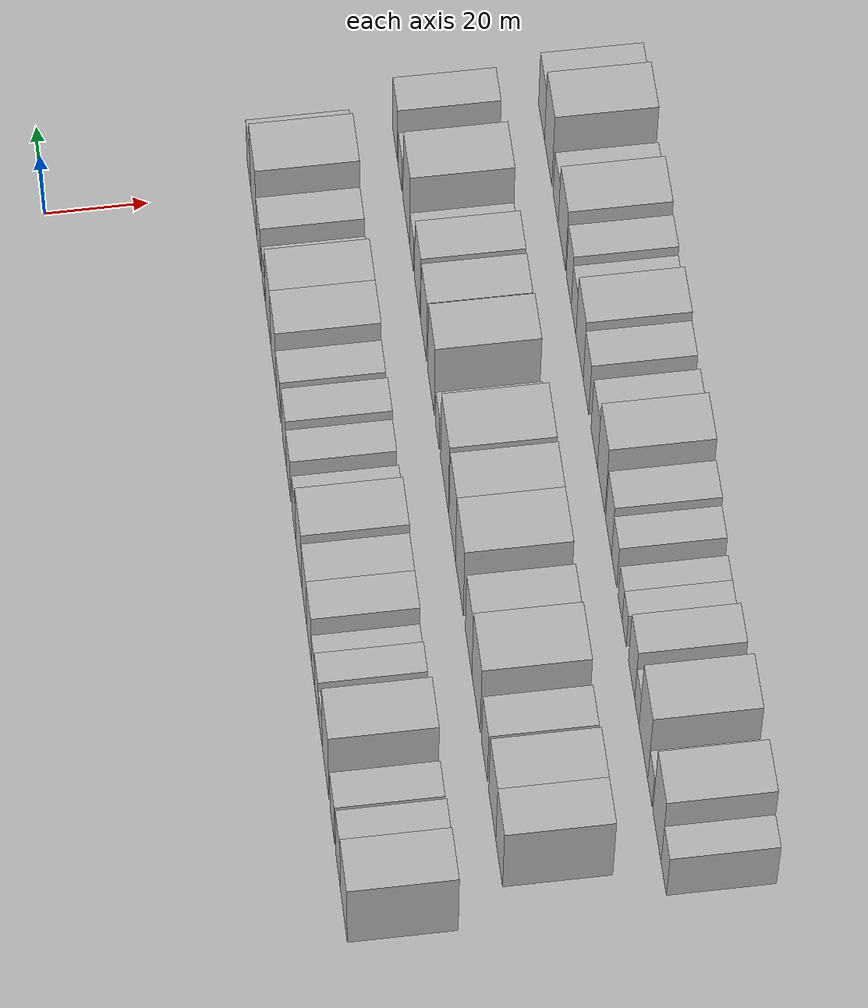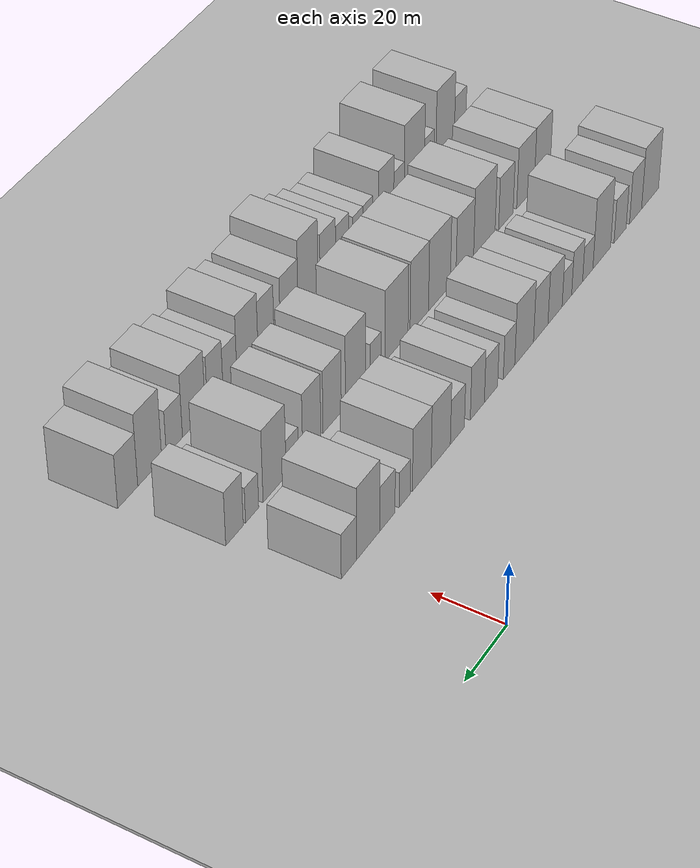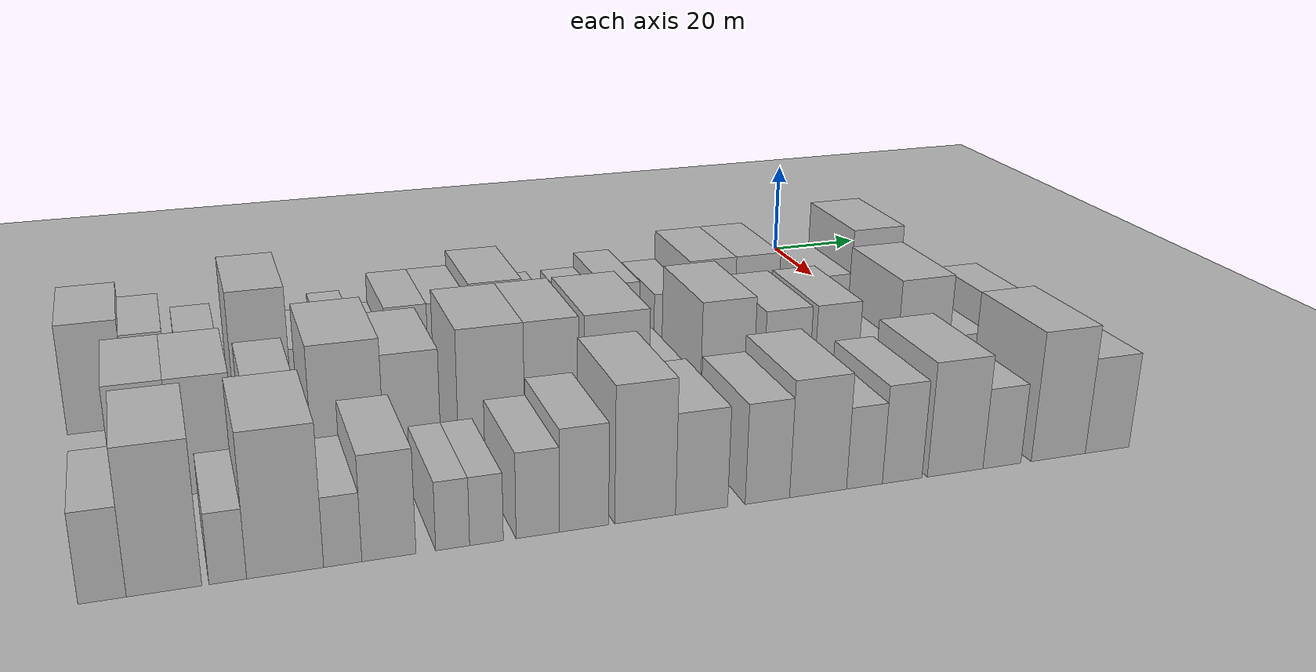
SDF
<sdf version="1.6">
 <world name="default">
  <include><name>ground_plane_1</name><uri>model://HANNAS_ground_plane</uri></include>
  <include>
   <name>ground_plane_2</name>
   <uri>model://HANNAS_ground_plane</uri>
   <pose>100 0 0  0 0 0</pose>
  </include>
  <model name="building_22">
   <static>1</static>
   <pose>50.0000 -156.6081 0 0.000000 0.000000 0.000000</pose>
   <link name="link">
    <pose>0 0 10.50 0 0 0</pose>
    <collision name="collision"><geometry><box><size>20.0000 10.3520 21.0000</size></box></geometry></collision>
    <visual name="visual">
     <cast_shadows>0</cast_shadows>
     <geometry><box><size>20.0000 10.3520 21.0000</size></box></geometry>
     <material>
      <script>
       <uri>model://HANNAS_wall/materials/scripts</uri>
       <uri>model://HANNAS_wall/materials/textures</uri>
       <name>vrc/HANNAS_wall</name>
      </script>
     </material>
    </visual>
   </link>
  </model>
  <model name="building_23">
   <static>1</static>
   <pose>50.0000 -147.7831 0 0.000000 0.000000 0.000000</pose>
   <link name="link">
    <pose>0 0 9.00 0 0 0</pose>
    <collision name="collision"><geometry><box><size>20.0000 7.2980 18.0000</size></box></geometry></collision>
    <visual name="visual">
     <cast_shadows>0</cast_shadows>
     <geometry><box><size>20.0000 7.2980 18.0000</size></box></geometry>
     <material>
      <script>
       <uri>model://HANNAS_wall/materials/scripts</uri>
       <uri>model://HANNAS_wall/materials/textures</uri>
       <name>vrc/HANNAS_wall</name>
      </script>
     </material>
    </visual>
   </link>
  </model>
  <model name="building_24">
   <static>1</static>
   <pose>50.0000 -138.5354 0 0.000000 0.000000 0.000000</pose>
   <link name="link">
    <pose>0 0 7.50 0 0 0</pose>
    <collision name="collision"><geometry><box><size>20.0000 7.1975 15.0000</size></box></geometry></collision>
    <visual name="visual">
     <cast_shadows>0</cast_shadows>
     <geometry><box><size>20.0000 7.1975 15.0000</size></box></geometry>
     <material>
      <script>
       <uri>model://HANNAS_wall/materials/scripts</uri>
       <uri>model://HANNAS_wall/materials/textures</uri>
       <name>vrc/HANNAS_wall</name>
      </script>
     </material>
    </visual>
   </link>
  </model>
  <model name="building_25">
   <static>1</static>
   <pose>50.0000 -127.7857 0 0.000000 0.000000 0.000000</pose>
   <link name="link">
    <pose>0 0 12.00 0 0 0</pose>
    <collision name="collision"><geometry><box><size>20.0000 10.3019 24.0000</size></box></geometry></collision>
    <visual name="visual">
     <cast_shadows>0</cast_shadows>
     <geometry><box><size>20.0000 10.3019 24.0000</size></box></geometry>
     <material>
      <script>
       <uri>model://HANNAS_wall/materials/scripts</uri>
       <uri>model://HANNAS_wall/materials/textures</uri>
       <name>vrc/HANNAS_wall</name>
      </script>
     </material>
    </visual>
   </link>
  </model>
  <model name="building_26">
   <static>1</static>
   <pose>50.0000 -119.6560 0 0.000000 0.000000 0.000000</pose>
   <link name="link">
    <pose>0 0 6.00 0 0 0</pose>
    <collision name="collision"><geometry><box><size>20.0000 5.9576 12.0000</size></box></geometry></collision>
    <visual name="visual">
     <cast_shadows>0</cast_shadows>
     <geometry><box><size>20.0000 5.9576 12.0000</size></box></geometry>
     <material>
      <script>
       <uri>model://HANNAS_wall/materials/scripts</uri>
       <uri>model://HANNAS_wall/materials/textures</uri>
       <name>vrc/HANNAS_wall</name>
      </script>
     </material>
    </visual>
   </link>
  </model>
  <model name="building_27">
   <static>1</static>
   <pose>50.0000 -113.5706 0 0.000000 0.000000 0.000000</pose>
   <link name="link">
    <pose>0 0 7.50 0 0 0</pose>
    <collision name="collision"><geometry><box><size>20.0000 6.2130 15.0000</size></box></geometry></collision>
    <visual name="visual">
     <cast_shadows>0</cast_shadows>
     <geometry><box><size>20.0000 6.2130 15.0000</size></box></geometry>
     <material>
      <script>
       <uri>model://HANNAS_wall/materials/scripts</uri>
       <uri>model://HANNAS_wall/materials/textures</uri>
       <name>vrc/HANNAS_wall</name>
      </script>
     </material>
    </visual>
   </link>
  </model>
  <model name="building_28">
   <static>1</static>
   <pose>50.0000 -107.7802 0 0.000000 0.000000 0.000000</pose>
   <link name="link">
    <pose>0 0 6.00 0 0 0</pose>
    <collision name="collision"><geometry><box><size>20.0000 5.3678 12.0000</size></box></geometry></collision>
    <visual name="visual">
     <cast_shadows>0</cast_shadows>
     <geometry><box><size>20.0000 5.3678 12.0000</size></box></geometry>
     <material>
      <script>
       <uri>model://HANNAS_wall/materials/scripts</uri>
       <uri>model://HANNAS_wall/materials/textures</uri>
       <name>vrc/HANNAS_wall</name>
      </script>
     </material>
    </visual>
   </link>
  </model>
  <model name="building_29">
   <static>1</static>
   <pose>50.0000 -101.1419 0 0.000000 0.000000 0.000000</pose>
   <link name="link">
    <pose>0 0 9.00 0 0 0</pose>
    <collision name="collision"><geometry><box><size>20.0000 7.9087 18.0000</size></box></geometry></collision>
    <visual name="visual">
     <cast_shadows>0</cast_shadows>
     <geometry><box><size>20.0000 7.9087 18.0000</size></box></geometry>
     <material>
      <script>
       <uri>model://HANNAS_wall/materials/scripts</uri>
       <uri>model://HANNAS_wall/materials/textures</uri>
       <name>vrc/HANNAS_wall</name>
      </script>
     </material>
    </visual>
   </link>
  </model>
  <model name="building_30">
   <static>1</static>
   <pose>50.0000 -93.2247 0 0.000000 0.000000 0.000000</pose>
   <link name="link">
    <pose>0 0 9.00 0 0 0</pose>
    <collision name="collision"><geometry><box><size>20.0000 7.9257 18.0000</size></box></geometry></collision>
    <visual name="visual">
     <cast_shadows>0</cast_shadows>
     <geometry><box><size>20.0000 7.9257 18.0000</size></box></geometry>
     <material>
      <script>
       <uri>model://HANNAS_wall/materials/scripts</uri>
       <uri>model://HANNAS_wall/materials/textures</uri>
       <name>vrc/HANNAS_wall</name>
      </script>
     </material>
    </visual>
   </link>
  </model>
  <model name="building_31">
   <static>1</static>
   <pose>50.0000 -84.1752 0 0.000000 0.000000 0.000000</pose>
   <link name="link">
    <pose>0 0 10.50 0 0 0</pose>
    <collision name="collision"><geometry><box><size>20.0000 10.1734 21.0000</size></box></geometry></collision>
    <visual name="visual">
     <cast_shadows>0</cast_shadows>
     <geometry><box><size>20.0000 10.1734 21.0000</size></box></geometry>
     <material>
      <script>
       <uri>model://HANNAS_wall/materials/scripts</uri>
       <uri>model://HANNAS_wall/materials/textures</uri>
       <name>vrc/HANNAS_wall</name>
      </script>
     </material>
    </visual>
   </link>
  </model>
  <model name="building_32">
   <static>1</static>
   <pose>50.0000 -76.0340 0 0.000000 0.000000 0.000000</pose>
   <link name="link">
    <pose>0 0 7.50 0 0 0</pose>
    <collision name="collision"><geometry><box><size>20.0000 6.1088 15.0000</size></box></geometry></collision>
    <visual name="visual">
     <cast_shadows>0</cast_shadows>
     <geometry><box><size>20.0000 6.1088 15.0000</size></box></geometry>
     <material>
      <script>
       <uri>model://HANNAS_wall/materials/scripts</uri>
       <uri>model://HANNAS_wall/materials/textures</uri>
       <name>vrc/HANNAS_wall</name>
      </script>
     </material>
    </visual>
   </link>
  </model>
  <model name="building_33">
   <static>1</static>
   <pose>50.0000 -66.5086 0 0.000000 0.000000 0.000000</pose>
   <link name="link">
    <pose>0 0 7.50 0 0 0</pose>
    <collision name="collision"><geometry><box><size>20.0000 6.9421 15.0000</size></box></geometry></collision>
    <visual name="visual">
     <cast_shadows>0</cast_shadows>
     <geometry><box><size>20.0000 6.9421 15.0000</size></box></geometry>
     <material>
      <script>
       <uri>model://HANNAS_wall/materials/scripts</uri>
       <uri>model://HANNAS_wall/materials/textures</uri>
       <name>vrc/HANNAS_wall</name>
      </script>
     </material>
    </visual>
   </link>
  </model>
  <model name="building_34">
   <static>1</static>
   <pose>50.0000 -59.3887 0 0.000000 0.000000 0.000000</pose>
   <link name="link">
    <pose>0 0 9.00 0 0 0</pose>
    <collision name="collision"><geometry><box><size>20.0000 7.2976 18.0000</size></box></geometry></collision>
    <visual name="visual">
     <cast_shadows>0</cast_shadows>
     <geometry><box><size>20.0000 7.2976 18.0000</size></box></geometry>
     <material>
      <script>
       <uri>model://HANNAS_wall/materials/scripts</uri>
       <uri>model://HANNAS_wall/materials/textures</uri>
       <name>vrc/HANNAS_wall</name>
      </script>
     </material>
    </visual>
   </link>
  </model>
  <model name="building_35">
   <static>1</static>
   <pose>50.0000 -49.1687 0 0.000000 0.000000 0.000000</pose>
   <link name="link">
    <pose>0 0 7.50 0 0 0</pose>
    <collision name="collision"><geometry><box><size>20.0000 7.1424 15.0000</size></box></geometry></collision>
    <visual name="visual">
     <cast_shadows>0</cast_shadows>
     <geometry><box><size>20.0000 7.1424 15.0000</size></box></geometry>
     <material>
      <script>
       <uri>model://HANNAS_wall/materials/scripts</uri>
       <uri>model://HANNAS_wall/materials/textures</uri>
       <name>vrc/HANNAS_wall</name>
      </script>
     </material>
    </visual>
   </link>
  </model>
  <model name="building_36">
   <static>1</static>
   <pose>50.0000 -40.7982 0 0.000000 0.000000 0.000000</pose>
   <link name="link">
    <pose>0 0 10.50 0 0 0</pose>
    <collision name="collision"><geometry><box><size>20.0000 9.5987 21.0000</size></box></geometry></collision>
    <visual name="visual">
     <cast_shadows>0</cast_shadows>
     <geometry><box><size>20.0000 9.5987 21.0000</size></box></geometry>
     <material>
      <script>
       <uri>model://HANNAS_wall/materials/scripts</uri>
       <uri>model://HANNAS_wall/materials/textures</uri>
       <name>vrc/HANNAS_wall</name>
      </script>
     </material>
    </visual>
   </link>
  </model>
  <model name="building_37">
   <static>1</static>
   <pose>50.0000 -31.3632 0 0.000000 0.000000 0.000000</pose>
   <link name="link">
    <pose>0 0 10.50 0 0 0</pose>
    <collision name="collision"><geometry><box><size>20.0000 9.2714 21.0000</size></box></geometry></collision>
    <visual name="visual">
     <cast_shadows>0</cast_shadows>
     <geometry><box><size>20.0000 9.2714 21.0000</size></box></geometry>
     <material>
      <script>
       <uri>model://HANNAS_wall/materials/scripts</uri>
       <uri>model://HANNAS_wall/materials/textures</uri>
       <name>vrc/HANNAS_wall</name>
      </script>
     </material>
    </visual>
   </link>
  </model>
  <model name="building_38">
   <static>1</static>
   <pose>50.0000 -23.0225 0 0.000000 0.000000 0.000000</pose>
   <link name="link">
    <pose>0 0 6.00 0 0 0</pose>
    <collision name="collision"><geometry><box><size>20.0000 5.4099 12.0000</size></box></geometry></collision>
    <visual name="visual">
     <cast_shadows>0</cast_shadows>
     <geometry><box><size>20.0000 5.4099 12.0000</size></box></geometry>
     <material>
      <script>
       <uri>model://HANNAS_wall/materials/scripts</uri>
       <uri>model://HANNAS_wall/materials/textures</uri>
       <name>vrc/HANNAS_wall</name>
      </script>
     </material>
    </visual>
   </link>
  </model>
  <model name="building_39">
   <static>1</static>
   <pose>50.0000 -14.6906 0 0.000000 0.000000 0.000000</pose>
   <link name="link">
    <pose>0 0 7.50 0 0 0</pose>
    <collision name="collision"><geometry><box><size>20.0000 7.2540 15.0000</size></box></geometry></collision>
    <visual name="visual">
     <cast_shadows>0</cast_shadows>
     <geometry><box><size>20.0000 7.2540 15.0000</size></box></geometry>
     <material>
      <script>
       <uri>model://HANNAS_wall/materials/scripts</uri>
       <uri>model://HANNAS_wall/materials/textures</uri>
       <name>vrc/HANNAS_wall</name>
      </script>
     </material>
    </visual>
   </link>
  </model>
  <model name="building_40">
   <static>1</static>
   <pose>50.0000 -5.6001 0 0.000000 0.000000 0.000000</pose>
   <link name="link">
    <pose>0 0 12.00 0 0 0</pose>
    <collision name="collision"><geometry><box><size>20.0000 10.9268 24.0000</size></box></geometry></collision>
    <visual name="visual">
     <cast_shadows>0</cast_shadows>
     <geometry><box><size>20.0000 10.9268 24.0000</size></box></geometry>
     <material>
      <script>
       <uri>model://HANNAS_wall/materials/scripts</uri>
       <uri>model://HANNAS_wall/materials/textures</uri>
       <name>vrc/HANNAS_wall</name>
      </script>
     </material>
    </visual>
   </link>
  </model>
  <model name="building_41">
   <static>1</static>
   <pose>50.0000 3.3759 0 0.000000 0.000000 0.000000</pose>
   <link name="link">
    <pose>0 0 7.50 0 0 0</pose>
    <collision name="collision"><geometry><box><size>20.0000 7.0253 15.0000</size></box></geometry></collision>
    <visual name="visual">
     <cast_shadows>0</cast_shadows>
     <geometry><box><size>20.0000 7.0253 15.0000</size></box></geometry>
     <material>
      <script>
       <uri>model://HANNAS_wall/materials/scripts</uri>
       <uri>model://HANNAS_wall/materials/textures</uri>
       <name>vrc/HANNAS_wall</name>
      </script>
     </material>
    </visual>
   </link>
  </model>
  <model name="building_98">
   <static>1</static>
   <pose>79.0000 -149.4787 0 0.000000 0.000000 0.000000</pose>
   <link name="link">
    <pose>0 0 10.50 0 0 0</pose>
    <collision name="collision"><geometry><box><size>20.0000 9.3216 21.0000</size></box></geometry></collision>
    <visual name="visual">
     <cast_shadows>0</cast_shadows>
     <geometry><box><size>20.0000 9.3216 21.0000</size></box></geometry>
     <material>
      <script>
       <uri>model://HANNAS_wall/materials/scripts</uri>
       <uri>model://HANNAS_wall/materials/textures</uri>
       <name>vrc/HANNAS_wall</name>
      </script>
     </material>
    </visual>
   </link>
  </model>
  <model name="building_99">
   <static>1</static>
   <pose>79.0000 -139.7775 0 0.000000 0.000000 0.000000</pose>
   <link name="link">
    <pose>0 0 10.50 0 0 0</pose>
    <collision name="collision"><geometry><box><size>20.0000 10.0808 21.0000</size></box></geometry></collision>
    <visual name="visual">
     <cast_shadows>0</cast_shadows>
     <geometry><box><size>20.0000 10.0808 21.0000</size></box></geometry>
     <material>
      <script>
       <uri>model://HANNAS_wall/materials/scripts</uri>
       <uri>model://HANNAS_wall/materials/textures</uri>
       <name>vrc/HANNAS_wall</name>
      </script>
     </material>
    </visual>
   </link>
  </model>
  <model name="building_100">
   <static>1</static>
   <pose>79.0000 -128.6307 0 0.000000 0.000000 0.000000</pose>
   <link name="link">
    <pose>0 0 9.00 0 0 0</pose>
    <collision name="collision"><geometry><box><size>20.0000 8.2130 18.0000</size></box></geometry></collision>
    <visual name="visual">
     <cast_shadows>0</cast_shadows>
     <geometry><box><size>20.0000 8.2130 18.0000</size></box></geometry>
     <material>
      <script>
       <uri>model://HANNAS_wall/materials/scripts</uri>
       <uri>model://HANNAS_wall/materials/textures</uri>
       <name>vrc/HANNAS_wall</name>
      </script>
     </material>
    </visual>
   </link>
  </model>
  <model name="building_101">
   <static>1</static>
   <pose>79.0000 -116.5751 0 0.000000 0.000000 0.000000</pose>
   <link name="link">
    <pose>0 0 12.00 0 0 0</pose>
    <collision name="collision"><geometry><box><size>20.0000 11.8980 24.0000</size></box></geometry></collision>
    <visual name="visual">
     <cast_shadows>0</cast_shadows>
     <geometry><box><size>20.0000 11.8980 24.0000</size></box></geometry>
     <material>
      <script>
       <uri>model://HANNAS_wall/materials/scripts</uri>
       <uri>model://HANNAS_wall/materials/textures</uri>
       <name>vrc/HANNAS_wall</name>
      </script>
     </material>
    </visual>
   </link>
  </model>
  <model name="building_102">
   <static>1</static>
   <pose>79.0000 -105.8196 0 0.000000 0.000000 0.000000</pose>
   <link name="link">
    <pose>0 0 10.50 0 0 0</pose>
    <collision name="collision"><geometry><box><size>20.0000 9.6131 21.0000</size></box></geometry></collision>
    <visual name="visual">
     <cast_shadows>0</cast_shadows>
     <geometry><box><size>20.0000 9.6131 21.0000</size></box></geometry>
     <material>
      <script>
       <uri>model://HANNAS_wall/materials/scripts</uri>
       <uri>model://HANNAS_wall/materials/textures</uri>
       <name>vrc/HANNAS_wall</name>
      </script>
     </material>
    </visual>
   </link>
  </model>
  <model name="building_103">
   <static>1</static>
   <pose>79.0000 -92.2201 0 0.000000 0.000000 0.000000</pose>
   <link name="link">
    <pose>0 0 12.00 0 0 0</pose>
    <collision name="collision"><geometry><box><size>20.0000 11.5859 24.0000</size></box></geometry></collision>
    <visual name="visual">
     <cast_shadows>0</cast_shadows>
     <geometry><box><size>20.0000 11.5859 24.0000</size></box></geometry>
     <material>
      <script>
       <uri>model://HANNAS_wall/materials/scripts</uri>
       <uri>model://HANNAS_wall/materials/textures</uri>
       <name>vrc/HANNAS_wall</name>
      </script>
     </material>
    </visual>
   </link>
  </model>
  <model name="building_104">
   <static>1</static>
   <pose>79.0000 -81.6026 0 0.000000 0.000000 0.000000</pose>
   <link name="link">
    <pose>0 0 12.00 0 0 0</pose>
    <collision name="collision"><geometry><box><size>20.0000 9.6491 24.0000</size></box></geometry></collision>
    <visual name="visual">
     <cast_shadows>0</cast_shadows>
     <geometry><box><size>20.0000 9.6491 24.0000</size></box></geometry>
     <material>
      <script>
       <uri>model://HANNAS_wall/materials/scripts</uri>
       <uri>model://HANNAS_wall/materials/textures</uri>
       <name>vrc/HANNAS_wall</name>
      </script>
     </material>
    </visual>
   </link>
  </model>
  <model name="building_105">
   <static>1</static>
   <pose>79.0000 -69.8841 0 0.000000 0.000000 0.000000</pose>
   <link name="link">
    <pose>0 0 12.00 0 0 0</pose>
    <collision name="collision"><geometry><box><size>20.0000 11.7879 24.0000</size></box></geometry></collision>
    <visual name="visual">
     <cast_shadows>0</cast_shadows>
     <geometry><box><size>20.0000 11.7879 24.0000</size></box></geometry>
     <material>
      <script>
       <uri>model://HANNAS_wall/materials/scripts</uri>
       <uri>model://HANNAS_wall/materials/textures</uri>
       <name>vrc/HANNAS_wall</name>
      </script>
     </material>
    </visual>
   </link>
  </model>
  <model name="building_106">
   <static>1</static>
   <pose>79.0000 -59.1848 0 0.000000 0.000000 0.000000</pose>
   <link name="link">
    <pose>0 0 6.00 0 0 0</pose>
    <collision name="collision"><geometry><box><size>20.0000 5.6108 12.0000</size></box></geometry></collision>
    <visual name="visual">
     <cast_shadows>0</cast_shadows>
     <geometry><box><size>20.0000 5.6108 12.0000</size></box></geometry>
     <material>
      <script>
       <uri>model://HANNAS_wall/materials/scripts</uri>
       <uri>model://HANNAS_wall/materials/textures</uri>
       <name>vrc/HANNAS_wall</name>
      </script>
     </material>
    </visual>
   </link>
  </model>
  <model name="building_107">
   <static>1</static>
   <pose>79.0000 -49.3577 0 0.000000 0.000000 0.000000</pose>
   <link name="link">
    <pose>0 0 12.00 0 0 0</pose>
    <collision name="collision"><geometry><box><size>20.0000 10.0433 24.0000</size></box></geometry></collision>
    <visual name="visual">
     <cast_shadows>0</cast_shadows>
     <geometry><box><size>20.0000 10.0433 24.0000</size></box></geometry>
     <material>
      <script>
       <uri>model://HANNAS_wall/materials/scripts</uri>
       <uri>model://HANNAS_wall/materials/textures</uri>
       <name>vrc/HANNAS_wall</name>
      </script>
     </material>
    </visual>
   </link>
  </model>
  <model name="building_108">
   <static>1</static>
   <pose>79.0000 -37.9018 0 0.000000 0.000000 0.000000</pose>
   <link name="link">
    <pose>0 0 10.50 0 0 0</pose>
    <collision name="collision"><geometry><box><size>20.0000 8.8684 21.0000</size></box></geometry></collision>
    <visual name="visual">
     <cast_shadows>0</cast_shadows>
     <geometry><box><size>20.0000 8.8684 21.0000</size></box></geometry>
     <material>
      <script>
       <uri>model://HANNAS_wall/materials/scripts</uri>
       <uri>model://HANNAS_wall/materials/textures</uri>
       <name>vrc/HANNAS_wall</name>
      </script>
     </material>
    </visual>
   </link>
  </model>
  <model name="building_109">
   <static>1</static>
   <pose>79.0000 -28.1540 0 0.000000 0.000000 0.000000</pose>
   <link name="link">
    <pose>0 0 10.50 0 0 0</pose>
    <collision name="collision"><geometry><box><size>20.0000 8.6272 21.0000</size></box></geometry></collision>
    <visual name="visual">
     <cast_shadows>0</cast_shadows>
     <geometry><box><size>20.0000 8.6272 21.0000</size></box></geometry>
     <material>
      <script>
       <uri>model://HANNAS_wall/materials/scripts</uri>
       <uri>model://HANNAS_wall/materials/textures</uri>
       <name>vrc/HANNAS_wall</name>
      </script>
     </material>
    </visual>
   </link>
  </model>
  <model name="building_110">
   <static>1</static>
   <pose>79.0000 -18.9715 0 0.000000 0.000000 0.000000</pose>
   <link name="link">
    <pose>0 0 6.00 0 0 0</pose>
    <collision name="collision"><geometry><box><size>20.0000 5.7377 12.0000</size></box></geometry></collision>
    <visual name="visual">
     <cast_shadows>0</cast_shadows>
     <geometry><box><size>20.0000 5.7377 12.0000</size></box></geometry>
     <material>
      <script>
       <uri>model://HANNAS_wall/materials/scripts</uri>
       <uri>model://HANNAS_wall/materials/textures</uri>
       <name>vrc/HANNAS_wall</name>
      </script>
     </material>
    </visual>
   </link>
  </model>
  <model name="building_111">
   <static>1</static>
   <pose>79.0000 -10.7910 0 0.000000 0.000000 0.000000</pose>
   <link name="link">
    <pose>0 0 12.00 0 0 0</pose>
    <collision name="collision"><geometry><box><size>20.0000 10.6233 24.0000</size></box></geometry></collision>
    <visual name="visual">
     <cast_shadows>0</cast_shadows>
     <geometry><box><size>20.0000 10.6233 24.0000</size></box></geometry>
     <material>
      <script>
       <uri>model://HANNAS_wall/materials/scripts</uri>
       <uri>model://HANNAS_wall/materials/textures</uri>
       <name>vrc/HANNAS_wall</name>
      </script>
     </material>
    </visual>
   </link>
  </model>
  <model name="building_112">
   <static>1</static>
   <pose>79.0000 -0.5046 0 0.000000 0.000000 0.000000</pose>
   <link name="link">
    <pose>0 0 6.00 0 0 0</pose>
    <collision name="collision"><geometry><box><size>20.0000 5.9496 12.0000</size></box></geometry></collision>
    <visual name="visual">
     <cast_shadows>0</cast_shadows>
     <geometry><box><size>20.0000 5.9496 12.0000</size></box></geometry>
     <material>
      <script>
       <uri>model://HANNAS_wall/materials/scripts</uri>
       <uri>model://HANNAS_wall/materials/textures</uri>
       <name>vrc/HANNAS_wall</name>
      </script>
     </material>
    </visual>
   </link>
  </model>
  <model name="building_113">
   <static>1</static>
   <pose>79.0000 7.3682 0 0.000000 0.000000 0.000000</pose>
   <link name="link">
    <pose>0 0 9.00 0 0 0</pose>
    <collision name="collision"><geometry><box><size>20.0000 7.7960 18.0000</size></box></geometry></collision>
    <visual name="visual">
     <cast_shadows>0</cast_shadows>
     <geometry><box><size>20.0000 7.7960 18.0000</size></box></geometry>
     <material>
      <script>
       <uri>model://HANNAS_wall/materials/scripts</uri>
       <uri>model://HANNAS_wall/materials/textures</uri>
       <name>vrc/HANNAS_wall</name>
      </script>
     </material>
    </visual>
   </link>
  </model>
  <model name="building_167">
   <static>1</static>
   <pose>108.0000 -156.0600 0 0.000000 0.000000 0.000000</pose>
   <link name="link">
    <pose>0 0 7.50 0 0 0</pose>
    <collision name="collision"><geometry><box><size>20.0000 6.5861 15.0000</size></box></geometry></collision>
    <visual name="visual">
     <cast_shadows>0</cast_shadows>
     <geometry><box><size>20.0000 6.5861 15.0000</size></box></geometry>
     <material>
      <script>
       <uri>model://HANNAS_wall/materials/scripts</uri>
       <uri>model://HANNAS_wall/materials/textures</uri>
       <name>vrc/HANNAS_wall</name>
      </script>
     </material>
    </visual>
   </link>
  </model>
  <model name="building_168">
   <static>1</static>
   <pose>108.0000 -147.5309 0 0.000000 0.000000 0.000000</pose>
   <link name="link">
    <pose>0 0 12.00 0 0 0</pose>
    <collision name="collision"><geometry><box><size>20.0000 10.4721 24.0000</size></box></geometry></collision>
    <visual name="visual">
     <cast_shadows>0</cast_shadows>
     <geometry><box><size>20.0000 10.4721 24.0000</size></box></geometry>
     <material>
      <script>
       <uri>model://HANNAS_wall/materials/scripts</uri>
       <uri>model://HANNAS_wall/materials/textures</uri>
       <name>vrc/HANNAS_wall</name>
      </script>
     </material>
    </visual>
   </link>
  </model>
  <model name="building_169">
   <static>1</static>
   <pose>108.0000 -138.6159 0 0.000000 0.000000 0.000000</pose>
   <link name="link">
    <pose>0 0 6.00 0 0 0</pose>
    <collision name="collision"><geometry><box><size>20.0000 5.3578 12.0000</size></box></geometry></collision>
    <visual name="visual">
     <cast_shadows>0</cast_shadows>
     <geometry><box><size>20.0000 5.3578 12.0000</size></box></geometry>
     <material>
      <script>
       <uri>model://HANNAS_wall/materials/scripts</uri>
       <uri>model://HANNAS_wall/materials/textures</uri>
       <name>vrc/HANNAS_wall</name>
      </script>
     </material>
    </visual>
   </link>
  </model>
  <model name="building_170">
   <static>1</static>
   <pose>108.0000 -130.3634 0 0.000000 0.000000 0.000000</pose>
   <link name="link">
    <pose>0 0 12.00 0 0 0</pose>
    <collision name="collision"><geometry><box><size>20.0000 11.1472 24.0000</size></box></geometry></collision>
    <visual name="visual">
     <cast_shadows>0</cast_shadows>
     <geometry><box><size>20.0000 11.1472 24.0000</size></box></geometry>
     <material>
      <script>
       <uri>model://HANNAS_wall/materials/scripts</uri>
       <uri>model://HANNAS_wall/materials/textures</uri>
       <name>vrc/HANNAS_wall</name>
      </script>
     </material>
    </visual>
   </link>
  </model>
  <model name="building_171">
   <static>1</static>
   <pose>108.0000 -121.9643 0 0.000000 0.000000 0.000000</pose>
   <link name="link">
    <pose>0 0 6.00 0 0 0</pose>
    <collision name="collision"><geometry><box><size>20.0000 5.6510 12.0000</size></box></geometry></collision>
    <visual name="visual">
     <cast_shadows>0</cast_shadows>
     <geometry><box><size>20.0000 5.6510 12.0000</size></box></geometry>
     <material>
      <script>
       <uri>model://HANNAS_wall/materials/scripts</uri>
       <uri>model://HANNAS_wall/materials/textures</uri>
       <name>vrc/HANNAS_wall</name>
      </script>
     </material>
    </visual>
   </link>
  </model>
  <model name="building_172">
   <static>1</static>
   <pose>108.0000 -115.0744 0 0.000000 0.000000 0.000000</pose>
   <link name="link">
    <pose>0 0 9.00 0 0 0</pose>
    <collision name="collision"><geometry><box><size>20.0000 8.1289 18.0000</size></box></geometry></collision>
    <visual name="visual">
     <cast_shadows>0</cast_shadows>
     <geometry><box><size>20.0000 8.1289 18.0000</size></box></geometry>
     <material>
      <script>
       <uri>model://HANNAS_wall/materials/scripts</uri>
       <uri>model://HANNAS_wall/materials/textures</uri>
       <name>vrc/HANNAS_wall</name>
      </script>
     </material>
    </visual>
   </link>
  </model>
  <model name="building_173">
   <static>1</static>
   <pose>108.0000 -105.4021 0 0.000000 0.000000 0.000000</pose>
   <link name="link">
    <pose>0 0 6.00 0 0 0</pose>
    <collision name="collision"><geometry><box><size>20.0000 5.2157 12.0000</size></box></geometry></collision>
    <visual name="visual">
     <cast_shadows>0</cast_shadows>
     <geometry><box><size>20.0000 5.2157 12.0000</size></box></geometry>
     <material>
      <script>
       <uri>model://HANNAS_wall/materials/scripts</uri>
       <uri>model://HANNAS_wall/materials/textures</uri>
       <name>vrc/HANNAS_wall</name>
      </script>
     </material>
    </visual>
   </link>
  </model>
  <model name="building_174">
   <static>1</static>
   <pose>108.0000 -100.1642 0 0.000000 0.000000 0.000000</pose>
   <link name="link">
    <pose>0 0 6.00 0 0 0</pose>
    <collision name="collision"><geometry><box><size>20.0000 5.2600 12.0000</size></box></geometry></collision>
    <visual name="visual">
     <cast_shadows>0</cast_shadows>
     <geometry><box><size>20.0000 5.2600 12.0000</size></box></geometry>
     <material>
      <script>
       <uri>model://HANNAS_wall/materials/scripts</uri>
       <uri>model://HANNAS_wall/materials/textures</uri>
       <name>vrc/HANNAS_wall</name>
      </script>
     </material>
    </visual>
   </link>
  </model>
  <model name="building_175">
   <static>1</static>
   <pose>108.0000 -92.0912 0 0.000000 0.000000 0.000000</pose>
   <link name="link">
    <pose>0 0 7.50 0 0 0</pose>
    <collision name="collision"><geometry><box><size>20.0000 6.8860 15.0000</size></box></geometry></collision>
    <visual name="visual">
     <cast_shadows>0</cast_shadows>
     <geometry><box><size>20.0000 6.8860 15.0000</size></box></geometry>
     <material>
      <script>
       <uri>model://HANNAS_wall/materials/scripts</uri>
       <uri>model://HANNAS_wall/materials/textures</uri>
       <name>vrc/HANNAS_wall</name>
      </script>
     </material>
    </visual>
   </link>
  </model>
  <model name="building_176">
   <static>1</static>
   <pose>108.0000 -84.6693 0 0.000000 0.000000 0.000000</pose>
   <link name="link">
    <pose>0 0 9.00 0 0 0</pose>
    <collision name="collision"><geometry><box><size>20.0000 7.9579 18.0000</size></box></geometry></collision>
    <visual name="visual">
     <cast_shadows>0</cast_shadows>
     <geometry><box><size>20.0000 7.9579 18.0000</size></box></geometry>
     <material>
      <script>
       <uri>model://HANNAS_wall/materials/scripts</uri>
       <uri>model://HANNAS_wall/materials/textures</uri>
       <name>vrc/HANNAS_wall</name>
      </script>
     </material>
    </visual>
   </link>
  </model>
  <model name="building_177">
   <static>1</static>
   <pose>108.0000 -74.6652 0 0.000000 0.000000 0.000000</pose>
   <link name="link">
    <pose>0 0 12.00 0 0 0</pose>
    <collision name="collision"><geometry><box><size>20.0000 10.0502 24.0000</size></box></geometry></collision>
    <visual name="visual">
     <cast_shadows>0</cast_shadows>
     <geometry><box><size>20.0000 10.0502 24.0000</size></box></geometry>
     <material>
      <script>
       <uri>model://HANNAS_wall/materials/scripts</uri>
       <uri>model://HANNAS_wall/materials/textures</uri>
       <name>vrc/HANNAS_wall</name>
      </script>
     </material>
    </visual>
   </link>
  </model>
  <model name="building_178">
   <static>1</static>
   <pose>108.0000 -65.2248 0 0.000000 0.000000 0.000000</pose>
   <link name="link">
    <pose>0 0 9.00 0 0 0</pose>
    <collision name="collision"><geometry><box><size>20.0000 8.8305 18.0000</size></box></geometry></collision>
    <visual name="visual">
     <cast_shadows>0</cast_shadows>
     <geometry><box><size>20.0000 8.8305 18.0000</size></box></geometry>
     <material>
      <script>
       <uri>model://HANNAS_wall/materials/scripts</uri>
       <uri>model://HANNAS_wall/materials/textures</uri>
       <name>vrc/HANNAS_wall</name>
      </script>
     </material>
    </visual>
   </link>
  </model>
  <model name="building_179">
   <static>1</static>
   <pose>108.0000 -53.9520 0 0.000000 0.000000 0.000000</pose>
   <link name="link">
    <pose>0 0 9.00 0 0 0</pose>
    <collision name="collision"><geometry><box><size>20.0000 7.7152 18.0000</size></box></geometry></collision>
    <visual name="visual">
     <cast_shadows>0</cast_shadows>
     <geometry><box><size>20.0000 7.7152 18.0000</size></box></geometry>
     <material>
      <script>
       <uri>model://HANNAS_wall/materials/scripts</uri>
       <uri>model://HANNAS_wall/materials/textures</uri>
       <name>vrc/HANNAS_wall</name>
      </script>
     </material>
    </visual>
   </link>
  </model>
  <model name="building_180">
   <static>1</static>
   <pose>108.0000 -45.0538 0 0.000000 0.000000 0.000000</pose>
   <link name="link">
    <pose>0 0 10.50 0 0 0</pose>
    <collision name="collision"><geometry><box><size>20.0000 10.0811 21.0000</size></box></geometry></collision>
    <visual name="visual">
     <cast_shadows>0</cast_shadows>
     <geometry><box><size>20.0000 10.0811 21.0000</size></box></geometry>
     <material>
      <script>
       <uri>model://HANNAS_wall/materials/scripts</uri>
       <uri>model://HANNAS_wall/materials/textures</uri>
       <name>vrc/HANNAS_wall</name>
      </script>
     </material>
    </visual>
   </link>
  </model>
  <model name="building_181">
   <static>1</static>
   <pose>108.0000 -36.7760 0 0.000000 0.000000 0.000000</pose>
   <link name="link">
    <pose>0 0 7.50 0 0 0</pose>
    <collision name="collision"><geometry><box><size>20.0000 6.4746 15.0000</size></box></geometry></collision>
    <visual name="visual">
     <cast_shadows>0</cast_shadows>
     <geometry><box><size>20.0000 6.4746 15.0000</size></box></geometry>
     <material>
      <script>
       <uri>model://HANNAS_wall/materials/scripts</uri>
       <uri>model://HANNAS_wall/materials/textures</uri>
       <name>vrc/HANNAS_wall</name>
      </script>
     </material>
    </visual>
   </link>
  </model>
  <model name="building_182">
   <static>1</static>
   <pose>108.0000 -29.9127 0 0.000000 0.000000 0.000000</pose>
   <link name="link">
    <pose>0 0 9.00 0 0 0</pose>
    <collision name="collision"><geometry><box><size>20.0000 7.2519 18.0000</size></box></geometry></collision>
    <visual name="visual">
     <cast_shadows>0</cast_shadows>
     <geometry><box><size>20.0000 7.2519 18.0000</size></box></geometry>
     <material>
      <script>
       <uri>model://HANNAS_wall/materials/scripts</uri>
       <uri>model://HANNAS_wall/materials/textures</uri>
       <name>vrc/HANNAS_wall</name>
      </script>
     </material>
    </visual>
   </link>
  </model>
  <model name="building_183">
   <static>1</static>
   <pose>108.0000 -20.0828 0 0.000000 0.000000 0.000000</pose>
   <link name="link">
    <pose>0 0 10.50 0 0 0</pose>
    <collision name="collision"><geometry><box><size>20.0000 10.4078 21.0000</size></box></geometry></collision>
    <visual name="visual">
     <cast_shadows>0</cast_shadows>
     <geometry><box><size>20.0000 10.4078 21.0000</size></box></geometry>
     <material>
      <script>
       <uri>model://HANNAS_wall/materials/scripts</uri>
       <uri>model://HANNAS_wall/materials/textures</uri>
       <name>vrc/HANNAS_wall</name>
      </script>
     </material>
    </visual>
   </link>
  </model>
  <model name="building_184">
   <static>1</static>
   <pose>108.0000 -11.2597 0 0.000000 0.000000 0.000000</pose>
   <link name="link">
    <pose>0 0 7.50 0 0 0</pose>
    <collision name="collision"><geometry><box><size>20.0000 7.2385 15.0000</size></box></geometry></collision>
    <visual name="visual">
     <cast_shadows>0</cast_shadows>
     <geometry><box><size>20.0000 7.2385 15.0000</size></box></geometry>
     <material>
      <script>
       <uri>model://HANNAS_wall/materials/scripts</uri>
       <uri>model://HANNAS_wall/materials/textures</uri>
       <name>vrc/HANNAS_wall</name>
      </script>
     </material>
    </visual>
   </link>
  </model>
  <model name="building_185">
   <static>1</static>
   <pose>108.0000 -0.3633 0 0.000000 0.000000 0.000000</pose>
   <link name="link">
    <pose>0 0 12.00 0 0 0</pose>
    <collision name="collision"><geometry><box><size>20.0000 10.5542 24.0000</size></box></geometry></collision>
    <visual name="visual">
     <cast_shadows>0</cast_shadows>
     <geometry><box><size>20.0000 10.5542 24.0000</size></box></geometry>
     <material>
      <script>
       <uri>model://HANNAS_wall/materials/scripts</uri>
       <uri>model://HANNAS_wall/materials/textures</uri>
       <name>vrc/HANNAS_wall</name>
      </script>
     </material>
    </visual>
   </link>
  </model>
  <model name="building_186">
   <static>1</static>
   <pose>108.0000 9.2709 0 0.000000 0.000000 0.000000</pose>
   <link name="link">
    <pose>0 0 9.00 0 0 0</pose>
    <collision name="collision"><geometry><box><size>20.0000 8.7142 18.0000</size></box></geometry></collision>
    <visual name="visual">
     <cast_shadows>0</cast_shadows>
     <geometry><box><size>20.0000 8.7142 18.0000</size></box></geometry>
     <material>
      <script>
       <uri>model://HANNAS_wall/materials/scripts</uri>
       <uri>model://HANNAS_wall/materials/textures</uri>
       <name>vrc/HANNAS_wall</name>
      </script>
     </material>
    </visual>
   </link>
  </model>
 </world>
</sdf>
